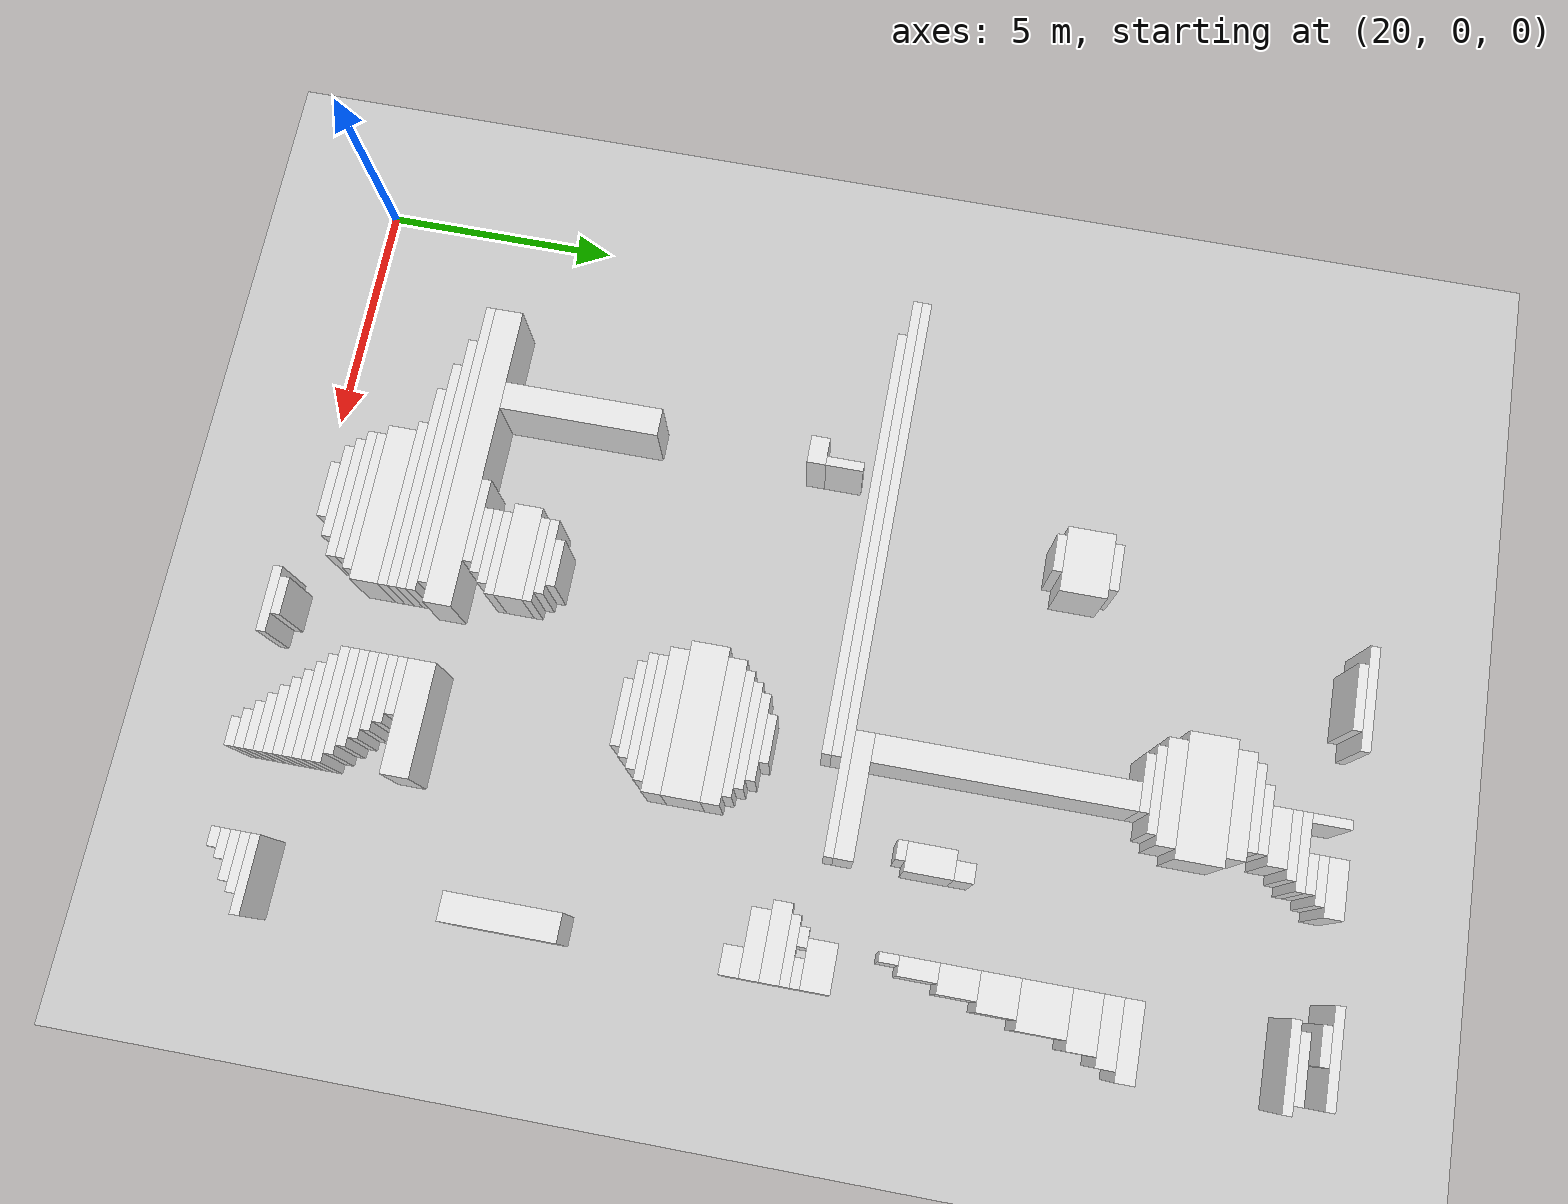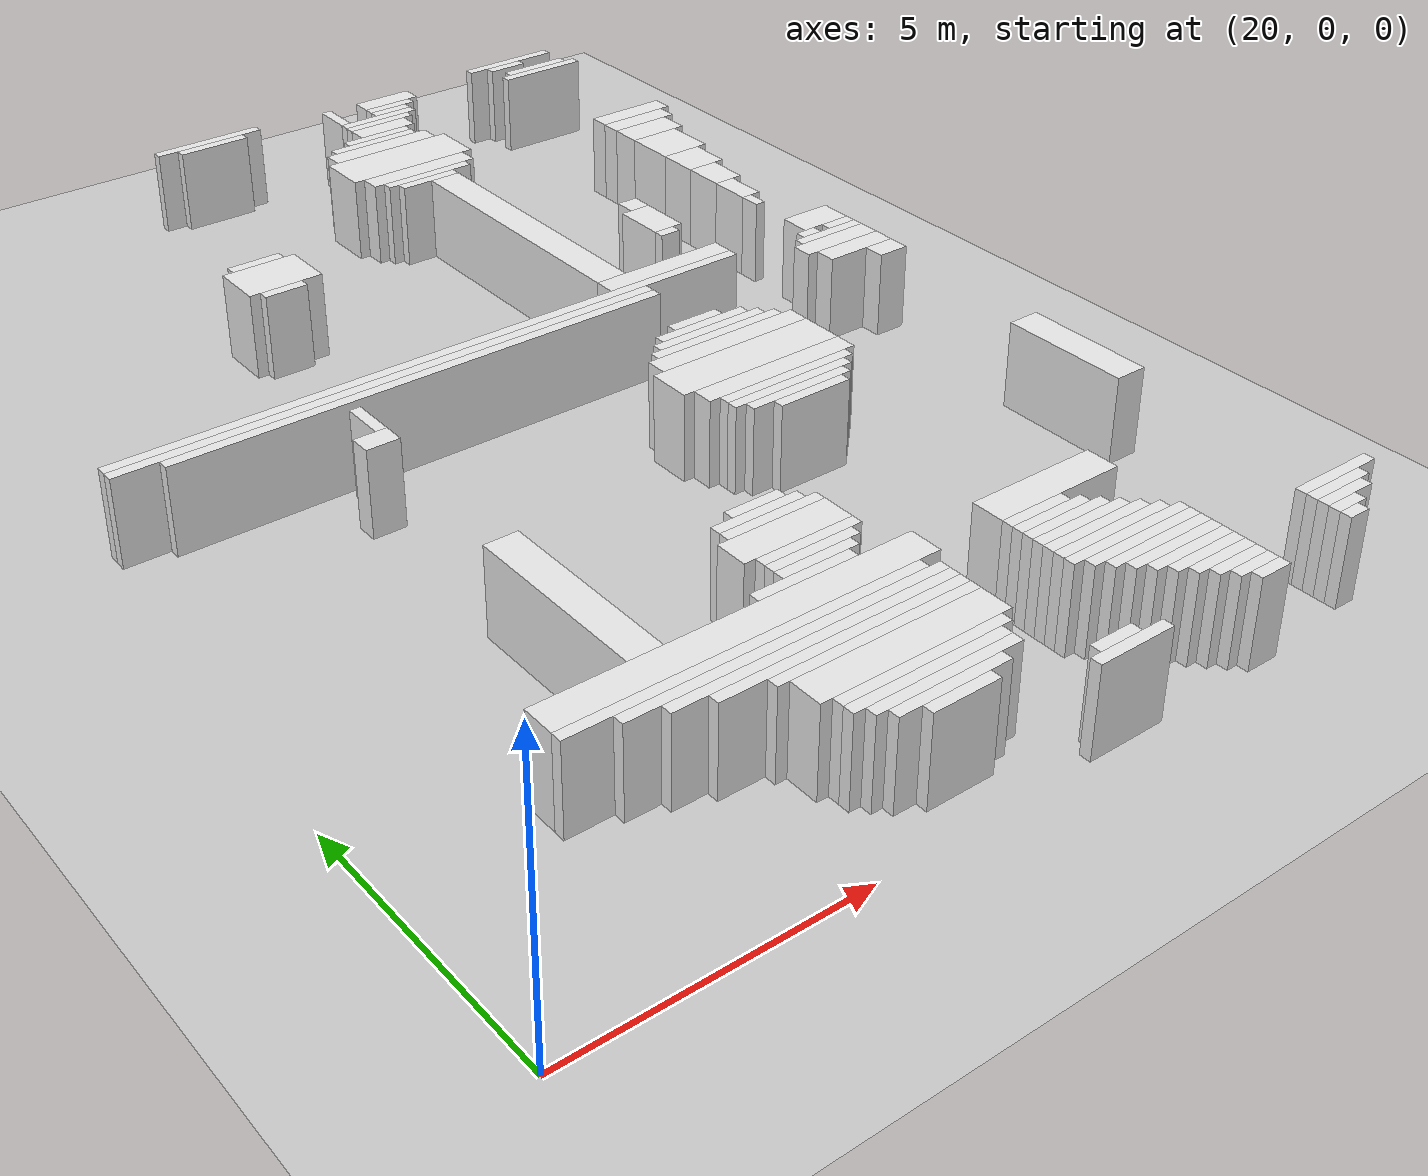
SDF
<sdf version="1.7">
 <world name="default">
  <model name="ground_plane">
   <static>1</static>
   <link name="link">
    <collision name="collision">
     <geometry><plane><normal>0 0 1</normal><size>120 120</size></plane></geometry>
    </collision>
    <visual name="visual">
     <geometry><plane><normal>0 0 1</normal><size>120 120</size></plane></geometry>
     <material>
      <script><uri>file://media/materials/scripts/gazebo.material</uri><name>Gazebo/Grey</name></script>
     </material>
    </visual>
   </link>
  </model>
  <model name="random_complex_02_model">
   <static>1</static>
   <link name="obs_1121">
    <pose>27.5000 22.5000 0.8000 0 0 0</pose>
    <collision name="obs_1121_col"><geometry><box><size>2.2000 0.2000 1.6000</size></box></geometry></collision>
    <visual name="obs_1121_vis">
     <geometry><box><size>2.2000 0.2000 1.6000</size></box></geometry>
     <material>
      <script><uri>file://media/materials/scripts/gazebo.material</uri><name>Gazebo/White</name></script>
     </material>
    </visual>
   </link>
   <link name="obs_1122">
    <pose>34.6000 22.5000 0.8000 0 0 0</pose>
    <collision name="obs_1122_col"><geometry><box><size>2.0000 0.2000 1.6000</size></box></geometry></collision>
    <visual name="obs_1122_vis">
     <geometry><box><size>2.0000 0.2000 1.6000</size></box></geometry>
     <material>
      <script><uri>file://media/materials/scripts/gazebo.material</uri><name>Gazebo/White</name></script>
     </material>
    </visual>
   </link>
   <link name="obs_1129">
    <pose>27.5000 22.3000 0.8000 0 0 0</pose>
    <collision name="obs_1129_col"><geometry><box><size>1.4000 0.2000 1.6000</size></box></geometry></collision>
    <visual name="obs_1129_vis">
     <geometry><box><size>1.4000 0.2000 1.6000</size></box></geometry>
     <material>
      <script><uri>file://media/materials/scripts/gazebo.material</uri><name>Gazebo/White</name></script>
     </material>
    </visual>
   </link>
   <link name="obs_1130">
    <pose>34.4000 22.3000 0.8000 0 0 0</pose>
    <collision name="obs_1130_col"><geometry><box><size>0.8000 0.2000 1.6000</size></box></geometry></collision>
    <visual name="obs_1130_vis">
     <geometry><box><size>0.8000 0.2000 1.6000</size></box></geometry>
     <material>
      <script><uri>file://media/materials/scripts/gazebo.material</uri><name>Gazebo/White</name></script>
     </material>
    </visual>
   </link>
   <link name="obs_1134">
    <pose>31.4000 22.2000 0.8000 0 0 0</pose>
    <collision name="obs_1134_col"><geometry><box><size>1.2000 0.4000 1.6000</size></box></geometry></collision>
    <visual name="obs_1134_vis">
     <geometry><box><size>1.2000 0.4000 1.6000</size></box></geometry>
     <material>
      <script><uri>file://media/materials/scripts/gazebo.material</uri><name>Gazebo/White</name></script>
     </material>
    </visual>
   </link>
   <link name="obs_1141">
    <pose>31.3000 21.9000 0.8000 0 0 0</pose>
    <collision name="obs_1141_col"><geometry><box><size>1.0000 0.2000 1.6000</size></box></geometry></collision>
    <visual name="obs_1141_vis">
     <geometry><box><size>1.0000 0.2000 1.6000</size></box></geometry>
     <material>
      <script><uri>file://media/materials/scripts/gazebo.material</uri><name>Gazebo/White</name></script>
     </material>
    </visual>
   </link>
   <link name="obs_1142">
    <pose>34.9000 21.9000 0.8000 0 0 0</pose>
    <collision name="obs_1142_col"><geometry><box><size>1.4000 0.2000 1.6000</size></box></geometry></collision>
    <visual name="obs_1142_vis">
     <geometry><box><size>1.4000 0.2000 1.6000</size></box></geometry>
     <material>
      <script><uri>file://media/materials/scripts/gazebo.material</uri><name>Gazebo/White</name></script>
     </material>
    </visual>
   </link>
   <link name="obs_1146">
    <pose>30.1000 22.0000 0.8000 0 0 0</pose>
    <collision name="obs_1146_col"><geometry><box><size>0.2000 0.8000 1.6000</size></box></geometry></collision>
    <visual name="obs_1146_vis">
     <geometry><box><size>0.2000 0.8000 1.6000</size></box></geometry>
     <material>
      <script><uri>file://media/materials/scripts/gazebo.material</uri><name>Gazebo/White</name></script>
     </material>
    </visual>
   </link>
   <link name="obs_1152">
    <pose>31.2000 21.7000 0.8000 0 0 0</pose>
    <collision name="obs_1152_col"><geometry><box><size>0.8000 0.2000 1.6000</size></box></geometry></collision>
    <visual name="obs_1152_vis">
     <geometry><box><size>0.8000 0.2000 1.6000</size></box></geometry>
     <material>
      <script><uri>file://media/materials/scripts/gazebo.material</uri><name>Gazebo/White</name></script>
     </material>
    </visual>
   </link>
   <link name="obs_1153">
    <pose>34.9000 21.7000 0.8000 0 0 0</pose>
    <collision name="obs_1153_col"><geometry><box><size>1.8000 0.2000 1.6000</size></box></geometry></collision>
    <visual name="obs_1153_vis">
     <geometry><box><size>1.8000 0.2000 1.6000</size></box></geometry>
     <material>
      <script><uri>file://media/materials/scripts/gazebo.material</uri><name>Gazebo/White</name></script>
     </material>
    </visual>
   </link>
   <link name="obs_1161">
    <pose>30.8000 21.5000 0.8000 0 0 0</pose>
    <collision name="obs_1161_col"><geometry><box><size>1.6000 0.2000 1.6000</size></box></geometry></collision>
    <visual name="obs_1161_vis">
     <geometry><box><size>1.6000 0.2000 1.6000</size></box></geometry>
     <material>
      <script><uri>file://media/materials/scripts/gazebo.material</uri><name>Gazebo/White</name></script>
     </material>
    </visual>
   </link>
   <link name="obs_1169">
    <pose>30.7000 21.3000 0.8000 0 0 0</pose>
    <collision name="obs_1169_col"><geometry><box><size>1.4000 0.2000 1.6000</size></box></geometry></collision>
    <visual name="obs_1169_vis">
     <geometry><box><size>1.4000 0.2000 1.6000</size></box></geometry>
     <material>
      <script><uri>file://media/materials/scripts/gazebo.material</uri><name>Gazebo/White</name></script>
     </material>
    </visual>
   </link>
   <link name="obs_1182">
    <pose>30.6000 21.0000 0.8000 0 0 0</pose>
    <collision name="obs_1182_col"><geometry><box><size>1.2000 0.4000 1.6000</size></box></geometry></collision>
    <visual name="obs_1182_vis">
     <geometry><box><size>1.2000 0.4000 1.6000</size></box></geometry>
     <material>
      <script><uri>file://media/materials/scripts/gazebo.material</uri><name>Gazebo/White</name></script>
     </material>
    </visual>
   </link>
   <link name="obs_1199">
    <pose>30.3000 20.7000 0.8000 0 0 0</pose>
    <collision name="obs_1199_col"><geometry><box><size>1.4000 0.2000 1.6000</size></box></geometry></collision>
    <visual name="obs_1199_vis">
     <geometry><box><size>1.4000 0.2000 1.6000</size></box></geometry>
     <material>
      <script><uri>file://media/materials/scripts/gazebo.material</uri><name>Gazebo/White</name></script>
     </material>
    </visual>
   </link>
   <link name="obs_1206">
    <pose>30.1000 20.5000 0.8000 0 0 0</pose>
    <collision name="obs_1206_col"><geometry><box><size>1.8000 0.2000 1.6000</size></box></geometry></collision>
    <visual name="obs_1206_vis">
     <geometry><box><size>1.8000 0.2000 1.6000</size></box></geometry>
     <material>
      <script><uri>file://media/materials/scripts/gazebo.material</uri><name>Gazebo/White</name></script>
     </material>
    </visual>
   </link>
   <link name="obs_1220">
    <pose>30.1000 20.2000 0.8000 0 0 0</pose>
    <collision name="obs_1220_col"><geometry><box><size>2.2000 0.4000 1.6000</size></box></geometry></collision>
    <visual name="obs_1220_vis">
     <geometry><box><size>2.2000 0.4000 1.6000</size></box></geometry>
     <material>
      <script><uri>file://media/materials/scripts/gazebo.material</uri><name>Gazebo/White</name></script>
     </material>
    </visual>
   </link>
   <link name="obs_1251">
    <pose>30.1000 19.5000 0.8000 0 0 0</pose>
    <collision name="obs_1251_col"><geometry><box><size>2.6000 1.0000 1.6000</size></box></geometry></collision>
    <visual name="obs_1251_vis">
     <geometry><box><size>2.6000 1.0000 1.6000</size></box></geometry>
     <material>
      <script><uri>file://media/materials/scripts/gazebo.material</uri><name>Gazebo/White</name></script>
     </material>
    </visual>
   </link>
   <link name="obs_1276">
    <pose>30.1000 18.8000 0.8000 0 0 0</pose>
    <collision name="obs_1276_col"><geometry><box><size>2.2000 0.4000 1.6000</size></box></geometry></collision>
    <visual name="obs_1276_vis">
     <geometry><box><size>2.2000 0.4000 1.6000</size></box></geometry>
     <material>
      <script><uri>file://media/materials/scripts/gazebo.material</uri><name>Gazebo/White</name></script>
     </material>
    </visual>
   </link>
   <link name="obs_1285">
    <pose>35.0000 18.6000 0.8000 0 0 0</pose>
    <collision name="obs_1285_col"><geometry><box><size>1.6000 0.4000 1.6000</size></box></geometry></collision>
    <visual name="obs_1285_vis">
     <geometry><box><size>1.6000 0.4000 1.6000</size></box></geometry>
     <material>
      <script><uri>file://media/materials/scripts/gazebo.material</uri><name>Gazebo/White</name></script>
     </material>
    </visual>
   </link>
   <link name="obs_1291">
    <pose>30.1000 18.5000 0.8000 0 0 0</pose>
    <collision name="obs_1291_col"><geometry><box><size>1.8000 0.2000 1.6000</size></box></geometry></collision>
    <visual name="obs_1291_vis">
     <geometry><box><size>1.8000 0.2000 1.6000</size></box></geometry>
     <material>
      <script><uri>file://media/materials/scripts/gazebo.material</uri><name>Gazebo/White</name></script>
     </material>
    </visual>
   </link>
   <link name="obs_1296">
    <pose>30.0000 18.3000 0.8000 0 0 0</pose>
    <collision name="obs_1296_col"><geometry><box><size>1.2000 0.2000 1.6000</size></box></geometry></collision>
    <visual name="obs_1296_vis">
     <geometry><box><size>1.2000 0.2000 1.6000</size></box></geometry>
     <material>
      <script><uri>file://media/materials/scripts/gazebo.material</uri><name>Gazebo/White</name></script>
     </material>
    </visual>
   </link>
   <link name="obs_1298">
    <pose>34.9000 18.2000 0.8000 0 0 0</pose>
    <collision name="obs_1298_col"><geometry><box><size>1.4000 0.4000 1.6000</size></box></geometry></collision>
    <visual name="obs_1298_vis">
     <geometry><box><size>1.4000 0.4000 1.6000</size></box></geometry>
     <material>
      <script><uri>file://media/materials/scripts/gazebo.material</uri><name>Gazebo/White</name></script>
     </material>
    </visual>
   </link>
   <link name="obs_1306">
    <pose>34.8000 17.7000 0.8000 0 0 0</pose>
    <collision name="obs_1306_col"><geometry><box><size>1.2000 0.6000 1.6000</size></box></geometry></collision>
    <visual name="obs_1306_vis">
     <geometry><box><size>1.2000 0.6000 1.6000</size></box></geometry>
     <material>
      <script><uri>file://media/materials/scripts/gazebo.material</uri><name>Gazebo/White</name></script>
     </material>
    </visual>
   </link>
   <link name="obs_1316">
    <pose>25.7000 17.1000 0.8000 0 0 0</pose>
    <collision name="obs_1316_col"><geometry><box><size>1.0000 0.2000 1.6000</size></box></geometry></collision>
    <visual name="obs_1316_vis">
     <geometry><box><size>1.0000 0.2000 1.6000</size></box></geometry>
     <material>
      <script><uri>file://media/materials/scripts/gazebo.material</uri><name>Gazebo/White</name></script>
     </material>
    </visual>
   </link>
   <link name="obs_1332">
    <pose>34.7000 16.9000 0.8000 0 0 0</pose>
    <collision name="obs_1332_col"><geometry><box><size>1.0000 1.0000 1.6000</size></box></geometry></collision>
    <visual name="obs_1332_vis">
     <geometry><box><size>1.0000 1.0000 1.6000</size></box></geometry>
     <material>
      <script><uri>file://media/materials/scripts/gazebo.material</uri><name>Gazebo/White</name></script>
     </material>
    </visual>
   </link>
   <link name="obs_1344">
    <pose>25.7000 16.5000 0.8000 0 0 0</pose>
    <collision name="obs_1344_col"><geometry><box><size>1.4000 1.0000 1.6000</size></box></geometry></collision>
    <visual name="obs_1344_vis">
     <geometry><box><size>1.4000 1.0000 1.6000</size></box></geometry>
     <material>
      <script><uri>file://media/materials/scripts/gazebo.material</uri><name>Gazebo/White</name></script>
     </material>
    </visual>
   </link>
   <link name="obs_1355">
    <pose>25.6000 15.9000 0.8000 0 0 0</pose>
    <collision name="obs_1355_col"><geometry><box><size>0.8000 0.2000 1.6000</size></box></geometry></collision>
    <visual name="obs_1355_vis">
     <geometry><box><size>0.8000 0.2000 1.6000</size></box></geometry>
     <material>
      <script><uri>file://media/materials/scripts/gazebo.material</uri><name>Gazebo/White</name></script>
     </material>
    </visual>
   </link>
   <link name="obs_1357">
    <pose>34.6000 16.0000 0.8000 0 0 0</pose>
    <collision name="obs_1357_col"><geometry><box><size>0.8000 0.8000 1.6000</size></box></geometry></collision>
    <visual name="obs_1357_vis">
     <geometry><box><size>0.8000 0.8000 1.6000</size></box></geometry>
     <material>
      <script><uri>file://media/materials/scripts/gazebo.material</uri><name>Gazebo/White</name></script>
     </material>
    </visual>
   </link>
   <link name="obs_1380">
    <pose>34.5000 15.2000 0.8000 0 0 0</pose>
    <collision name="obs_1380_col"><geometry><box><size>0.6000 0.8000 1.6000</size></box></geometry></collision>
    <visual name="obs_1380_vis">
     <geometry><box><size>0.6000 0.8000 1.6000</size></box></geometry>
     <material>
      <script><uri>file://media/materials/scripts/gazebo.material</uri><name>Gazebo/White</name></script>
     </material>
    </visual>
   </link>
   <link name="obs_1382">
    <pose>32.4000 15.0000 0.8000 0 0 0</pose>
    <collision name="obs_1382_col"><geometry><box><size>0.4000 0.4000 1.6000</size></box></geometry></collision>
    <visual name="obs_1382_vis">
     <geometry><box><size>0.4000 0.4000 1.6000</size></box></geometry>
     <material>
      <script><uri>file://media/materials/scripts/gazebo.material</uri><name>Gazebo/White</name></script>
     </material>
    </visual>
   </link>
   <link name="obs_1406">
    <pose>34.4000 14.4000 0.8000 0 0 0</pose>
    <collision name="obs_1406_col"><geometry><box><size>0.4000 0.8000 1.6000</size></box></geometry></collision>
    <visual name="obs_1406_vis">
     <geometry><box><size>0.4000 0.8000 1.6000</size></box></geometry>
     <material>
      <script><uri>file://media/materials/scripts/gazebo.material</uri><name>Gazebo/White</name></script>
     </material>
    </visual>
   </link>
   <link name="obs_1412">
    <pose>32.3000 14.3000 0.8000 0 0 0</pose>
    <collision name="obs_1412_col"><geometry><box><size>0.6000 1.0000 1.6000</size></box></geometry></collision>
    <visual name="obs_1412_vis">
     <geometry><box><size>0.6000 1.0000 1.6000</size></box></geometry>
     <material>
      <script><uri>file://media/materials/scripts/gazebo.material</uri><name>Gazebo/White</name></script>
     </material>
    </visual>
   </link>
   <link name="obs_1421">
    <pose>34.3000 13.8000 0.8000 0 0 0</pose>
    <collision name="obs_1421_col"><geometry><box><size>0.2000 0.4000 1.6000</size></box></geometry></collision>
    <visual name="obs_1421_vis">
     <geometry><box><size>0.2000 0.4000 1.6000</size></box></geometry>
     <material>
      <script><uri>file://media/materials/scripts/gazebo.material</uri><name>Gazebo/White</name></script>
     </material>
    </visual>
   </link>
   <link name="obs_1427">
    <pose>32.2000 13.7000 0.8000 0 0 0</pose>
    <collision name="obs_1427_col"><geometry><box><size>0.4000 0.2000 1.6000</size></box></geometry></collision>
    <visual name="obs_1427_vis">
     <geometry><box><size>0.4000 0.2000 1.6000</size></box></geometry>
     <material>
      <script><uri>file://media/materials/scripts/gazebo.material</uri><name>Gazebo/White</name></script>
     </material>
    </visual>
   </link>
   <link name="obs_1442">
    <pose>30.3000 15.5000 0.8000 0 0 0</pose>
    <collision name="obs_1442_col"><geometry><box><size>0.6000 5.4000 1.6000</size></box></geometry></collision>
    <visual name="obs_1442_vis">
     <geometry><box><size>0.6000 5.4000 1.6000</size></box></geometry>
     <material>
      <script><uri>file://media/materials/scripts/gazebo.material</uri><name>Gazebo/White</name></script>
     </material>
    </visual>
   </link>
   <link name="obs_1454">
    <pose>31.3000 12.6000 0.8000 0 0 0</pose>
    <collision name="obs_1454_col"><geometry><box><size>2.6000 0.4000 1.6000</size></box></geometry></collision>
    <visual name="obs_1454_vis">
     <geometry><box><size>2.6000 0.4000 1.6000</size></box></geometry>
     <material>
      <script><uri>file://media/materials/scripts/gazebo.material</uri><name>Gazebo/White</name></script>
     </material>
    </visual>
   </link>
   <link name="obs_1458">
    <pose>34.7000 12.5000 0.8000 0 0 0</pose>
    <collision name="obs_1458_col"><geometry><box><size>1.0000 0.6000 1.6000</size></box></geometry></collision>
    <visual name="obs_1458_vis">
     <geometry><box><size>1.0000 0.6000 1.6000</size></box></geometry>
     <material>
      <script><uri>file://media/materials/scripts/gazebo.material</uri><name>Gazebo/White</name></script>
     </material>
    </visual>
   </link>
   <link name="obs_1463">
    <pose>26.6000 12.3000 0.8000 0 0 0</pose>
    <collision name="obs_1463_col"><geometry><box><size>12.0000 0.2000 1.6000</size></box></geometry></collision>
    <visual name="obs_1463_vis">
     <geometry><box><size>12.0000 0.2000 1.6000</size></box></geometry>
     <material>
      <script><uri>file://media/materials/scripts/gazebo.material</uri><name>Gazebo/White</name></script>
     </material>
    </visual>
   </link>
   <link name="obs_1472">
    <pose>25.6000 12.1000 0.8000 0 0 0</pose>
    <collision name="obs_1472_col"><geometry><box><size>10.0000 0.2000 1.6000</size></box></geometry></collision>
    <visual name="obs_1472_vis">
     <geometry><box><size>10.0000 0.2000 1.6000</size></box></geometry>
     <material>
      <script><uri>file://media/materials/scripts/gazebo.material</uri><name>Gazebo/White</name></script>
     </material>
    </visual>
   </link>
   <link name="obs_1473">
    <pose>34.2000 12.1000 0.8000 0 0 0</pose>
    <collision name="obs_1473_col"><geometry><box><size>0.4000 0.2000 1.6000</size></box></geometry></collision>
    <visual name="obs_1473_vis">
     <geometry><box><size>0.4000 0.2000 1.6000</size></box></geometry>
     <material>
      <script><uri>file://media/materials/scripts/gazebo.material</uri><name>Gazebo/White</name></script>
     </material>
    </visual>
   </link>
   <link name="obs_1474">
    <pose>34.9000 12.1000 0.8000 0 0 0</pose>
    <collision name="obs_1474_col"><geometry><box><size>0.6000 0.2000 1.6000</size></box></geometry></collision>
    <visual name="obs_1474_vis">
     <geometry><box><size>0.6000 0.2000 1.6000</size></box></geometry>
     <material>
      <script><uri>file://media/materials/scripts/gazebo.material</uri><name>Gazebo/White</name></script>
     </material>
    </visual>
   </link>
   <link name="obs_1483">
    <pose>26.0000 11.9000 0.8000 0 0 0</pose>
    <collision name="obs_1483_col"><geometry><box><size>9.2000 0.2000 1.6000</size></box></geometry></collision>
    <visual name="obs_1483_vis">
     <geometry><box><size>9.2000 0.2000 1.6000</size></box></geometry>
     <material>
      <script><uri>file://media/materials/scripts/gazebo.material</uri><name>Gazebo/White</name></script>
     </material>
    </visual>
   </link>
   <link name="obs_1484">
    <pose>34.5000 11.9000 0.8000 0 0 0</pose>
    <collision name="obs_1484_col"><geometry><box><size>1.4000 0.2000 1.6000</size></box></geometry></collision>
    <visual name="obs_1484_vis">
     <geometry><box><size>1.4000 0.2000 1.6000</size></box></geometry>
     <material>
      <script><uri>file://media/materials/scripts/gazebo.material</uri><name>Gazebo/White</name></script>
     </material>
    </visual>
   </link>
   <link name="obs_1492">
    <pose>34.4000 11.6000 0.8000 0 0 0</pose>
    <collision name="obs_1492_col"><geometry><box><size>1.6000 0.4000 1.6000</size></box></geometry></collision>
    <visual name="obs_1492_vis">
     <geometry><box><size>1.6000 0.4000 1.6000</size></box></geometry>
     <material>
      <script><uri>file://media/materials/scripts/gazebo.material</uri><name>Gazebo/White</name></script>
     </material>
    </visual>
   </link>
   <link name="obs_1502">
    <pose>34.5000 11.2000 0.8000 0 0 0</pose>
    <collision name="obs_1502_col"><geometry><box><size>1.4000 0.4000 1.6000</size></box></geometry></collision>
    <visual name="obs_1502_vis">
     <geometry><box><size>1.4000 0.4000 1.6000</size></box></geometry>
     <material>
      <script><uri>file://media/materials/scripts/gazebo.material</uri><name>Gazebo/White</name></script>
     </material>
    </visual>
   </link>
   <link name="obs_1505">
    <pose>24.5000 11.2000 0.8000 0 0 0</pose>
    <collision name="obs_1505_col"><geometry><box><size>0.2000 0.8000 1.6000</size></box></geometry></collision>
    <visual name="obs_1505_vis">
     <geometry><box><size>0.2000 0.8000 1.6000</size></box></geometry>
     <material>
      <script><uri>file://media/materials/scripts/gazebo.material</uri><name>Gazebo/White</name></script>
     </material>
    </visual>
   </link>
   <link name="obs_1510">
    <pose>34.9000 10.8000 0.8000 0 0 0</pose>
    <collision name="obs_1510_col"><geometry><box><size>0.6000 0.4000 1.6000</size></box></geometry></collision>
    <visual name="obs_1510_vis">
     <geometry><box><size>0.6000 0.4000 1.6000</size></box></geometry>
     <material>
      <script><uri>file://media/materials/scripts/gazebo.material</uri><name>Gazebo/White</name></script>
     </material>
    </visual>
   </link>
   <link name="obs_1514">
    <pose>30.5000 10.7000 0.8000 0 0 0</pose>
    <collision name="obs_1514_col"><geometry><box><size>1.0000 0.2000 1.6000</size></box></geometry></collision>
    <visual name="obs_1514_vis">
     <geometry><box><size>1.0000 0.2000 1.6000</size></box></geometry>
     <material>
      <script><uri>file://media/materials/scripts/gazebo.material</uri><name>Gazebo/White</name></script>
     </material>
    </visual>
   </link>
   <link name="obs_1517">
    <pose>24.3000 10.6000 0.8000 0 0 0</pose>
    <collision name="obs_1517_col"><geometry><box><size>0.6000 0.4000 1.6000</size></box></geometry></collision>
    <visual name="obs_1517_vis">
     <geometry><box><size>0.6000 0.4000 1.6000</size></box></geometry>
     <material>
      <script><uri>file://media/materials/scripts/gazebo.material</uri><name>Gazebo/White</name></script>
     </material>
    </visual>
   </link>
   <link name="obs_1521">
    <pose>30.5000 10.5000 0.8000 0 0 0</pose>
    <collision name="obs_1521_col"><geometry><box><size>1.8000 0.2000 1.6000</size></box></geometry></collision>
    <visual name="obs_1521_vis">
     <geometry><box><size>1.8000 0.2000 1.6000</size></box></geometry>
     <material>
      <script><uri>file://media/materials/scripts/gazebo.material</uri><name>Gazebo/White</name></script>
     </material>
    </visual>
   </link>
   <link name="obs_1529">
    <pose>30.5000 10.3000 0.8000 0 0 0</pose>
    <collision name="obs_1529_col"><geometry><box><size>2.2000 0.2000 1.6000</size></box></geometry></collision>
    <visual name="obs_1529_vis">
     <geometry><box><size>2.2000 0.2000 1.6000</size></box></geometry>
     <material>
      <script><uri>file://media/materials/scripts/gazebo.material</uri><name>Gazebo/White</name></script>
     </material>
    </visual>
   </link>
   <link name="obs_1536">
    <pose>30.5000 10.1000 0.8000 0 0 0</pose>
    <collision name="obs_1536_col"><geometry><box><size>2.6000 0.2000 1.6000</size></box></geometry></collision>
    <visual name="obs_1536_vis">
     <geometry><box><size>2.6000 0.2000 1.6000</size></box></geometry>
     <material>
      <script><uri>file://media/materials/scripts/gazebo.material</uri><name>Gazebo/White</name></script>
     </material>
    </visual>
   </link>
   <link name="obs_1550">
    <pose>30.5000 9.8000 0.8000 0 0 0</pose>
    <collision name="obs_1550_col"><geometry><box><size>3.0000 0.4000 1.6000</size></box></geometry></collision>
    <visual name="obs_1550_vis">
     <geometry><box><size>3.0000 0.4000 1.6000</size></box></geometry>
     <material>
      <script><uri>file://media/materials/scripts/gazebo.material</uri><name>Gazebo/White</name></script>
     </material>
    </visual>
   </link>
   <link name="obs_1586">
    <pose>30.4000 9.2000 0.8000 0 0 0</pose>
    <collision name="obs_1586_col"><geometry><box><size>3.2000 0.8000 1.6000</size></box></geometry></collision>
    <visual name="obs_1586_vis">
     <geometry><box><size>3.2000 0.8000 1.6000</size></box></geometry>
     <material>
      <script><uri>file://media/materials/scripts/gazebo.material</uri><name>Gazebo/White</name></script>
     </material>
    </visual>
   </link>
   <link name="obs_1606">
    <pose>30.5000 8.6000 0.8000 0 0 0</pose>
    <collision name="obs_1606_col"><geometry><box><size>3.0000 0.4000 1.6000</size></box></geometry></collision>
    <visual name="obs_1606_vis">
     <geometry><box><size>3.0000 0.4000 1.6000</size></box></geometry>
     <material>
      <script><uri>file://media/materials/scripts/gazebo.material</uri><name>Gazebo/White</name></script>
     </material>
    </visual>
   </link>
   <link name="obs_1619">
    <pose>30.5000 8.3000 0.8000 0 0 0</pose>
    <collision name="obs_1619_col"><geometry><box><size>2.6000 0.2000 1.6000</size></box></geometry></collision>
    <visual name="obs_1619_vis">
     <geometry><box><size>2.6000 0.2000 1.6000</size></box></geometry>
     <material>
      <script><uri>file://media/materials/scripts/gazebo.material</uri><name>Gazebo/White</name></script>
     </material>
    </visual>
   </link>
   <link name="obs_1629">
    <pose>30.4000 8.1000 0.8000 0 0 0</pose>
    <collision name="obs_1629_col"><geometry><box><size>2.4000 0.2000 1.6000</size></box></geometry></collision>
    <visual name="obs_1629_vis">
     <geometry><box><size>2.4000 0.2000 1.6000</size></box></geometry>
     <material>
      <script><uri>file://media/materials/scripts/gazebo.material</uri><name>Gazebo/White</name></script>
     </material>
    </visual>
   </link>
   <link name="obs_1636">
    <pose>30.4000 7.9000 0.8000 0 0 0</pose>
    <collision name="obs_1636_col"><geometry><box><size>2.0000 0.2000 1.6000</size></box></geometry></collision>
    <visual name="obs_1636_vis">
     <geometry><box><size>2.0000 0.2000 1.6000</size></box></geometry>
     <material>
      <script><uri>file://media/materials/scripts/gazebo.material</uri><name>Gazebo/White</name></script>
     </material>
    </visual>
   </link>
   <link name="obs_1642">
    <pose>30.5000 7.7000 0.8000 0 0 0</pose>
    <collision name="obs_1642_col"><geometry><box><size>1.4000 0.2000 1.6000</size></box></geometry></collision>
    <visual name="obs_1642_vis">
     <geometry><box><size>1.4000 0.2000 1.6000</size></box></geometry>
     <material>
      <script><uri>file://media/materials/scripts/gazebo.material</uri><name>Gazebo/White</name></script>
     </material>
    </visual>
   </link>
   <link name="obs_1710">
    <pose>27.7000 5.7000 0.8000 0 0 0</pose>
    <collision name="obs_1710_col"><geometry><box><size>1.0000 0.2000 1.6000</size></box></geometry></collision>
    <visual name="obs_1710_vis">
     <geometry><box><size>1.0000 0.2000 1.6000</size></box></geometry>
     <material>
      <script><uri>file://media/materials/scripts/gazebo.material</uri><name>Gazebo/White</name></script>
     </material>
    </visual>
   </link>
   <link name="obs_1722">
    <pose>27.6000 5.5000 0.8000 0 0 0</pose>
    <collision name="obs_1722_col"><geometry><box><size>1.6000 0.2000 1.6000</size></box></geometry></collision>
    <visual name="obs_1722_vis">
     <geometry><box><size>1.6000 0.2000 1.6000</size></box></geometry>
     <material>
      <script><uri>file://media/materials/scripts/gazebo.material</uri><name>Gazebo/White</name></script>
     </material>
    </visual>
   </link>
   <link name="obs_1732">
    <pose>27.7000 5.3000 0.8000 0 0 0</pose>
    <collision name="obs_1732_col"><geometry><box><size>1.8000 0.2000 1.6000</size></box></geometry></collision>
    <visual name="obs_1732_vis">
     <geometry><box><size>1.8000 0.2000 1.6000</size></box></geometry>
     <material>
      <script><uri>file://media/materials/scripts/gazebo.material</uri><name>Gazebo/White</name></script>
     </material>
    </visual>
   </link>
   <link name="obs_1733">
    <pose>34.9000 6.2000 0.8000 0 0 0</pose>
    <collision name="obs_1733_col"><geometry><box><size>0.6000 2.4000 1.6000</size></box></geometry></collision>
    <visual name="obs_1733_vis">
     <geometry><box><size>0.6000 2.4000 1.6000</size></box></geometry>
     <material>
      <script><uri>file://media/materials/scripts/gazebo.material</uri><name>Gazebo/White</name></script>
     </material>
    </visual>
   </link>
   <link name="obs_1755">
    <pose>27.6000 4.9000 0.8000 0 0 0</pose>
    <collision name="obs_1755_col"><geometry><box><size>2.0000 0.6000 1.6000</size></box></geometry></collision>
    <visual name="obs_1755_vis">
     <geometry><box><size>2.0000 0.6000 1.6000</size></box></geometry>
     <material>
      <script><uri>file://media/materials/scripts/gazebo.material</uri><name>Gazebo/White</name></script>
     </material>
    </visual>
   </link>
   <link name="obs_1769">
    <pose>27.7000 4.5000 0.8000 0 0 0</pose>
    <collision name="obs_1769_col"><geometry><box><size>1.8000 0.2000 1.6000</size></box></geometry></collision>
    <visual name="obs_1769_vis">
     <geometry><box><size>1.8000 0.2000 1.6000</size></box></geometry>
     <material>
      <script><uri>file://media/materials/scripts/gazebo.material</uri><name>Gazebo/White</name></script>
     </material>
    </visual>
   </link>
   <link name="obs_1779">
    <pose>27.6000 4.3000 0.8000 0 0 0</pose>
    <collision name="obs_1779_col"><geometry><box><size>1.6000 0.2000 1.6000</size></box></geometry></collision>
    <visual name="obs_1779_vis">
     <geometry><box><size>1.6000 0.2000 1.6000</size></box></geometry>
     <material>
      <script><uri>file://media/materials/scripts/gazebo.material</uri><name>Gazebo/White</name></script>
     </material>
    </visual>
   </link>
   <link name="obs_1791">
    <pose>27.5000 4.1000 0.8000 0 0 0</pose>
    <collision name="obs_1791_col"><geometry><box><size>1.4000 0.2000 1.6000</size></box></geometry></collision>
    <visual name="obs_1791_vis">
     <geometry><box><size>1.4000 0.2000 1.6000</size></box></geometry>
     <material>
      <script><uri>file://media/materials/scripts/gazebo.material</uri><name>Gazebo/White</name></script>
     </material>
    </visual>
   </link>
   <link name="obs_1794">
    <pose>24.3000 5.5000 0.8000 0 0 0</pose>
    <collision name="obs_1794_col"><geometry><box><size>0.6000 3.4000 1.6000</size></box></geometry></collision>
    <visual name="obs_1794_vis">
     <geometry><box><size>0.6000 3.4000 1.6000</size></box></geometry>
     <material>
      <script><uri>file://media/materials/scripts/gazebo.material</uri><name>Gazebo/White</name></script>
     </material>
    </visual>
   </link>
   <link name="obs_1805">
    <pose>27.1000 3.9000 0.8000 0 0 0</pose>
    <collision name="obs_1805_col"><geometry><box><size>1.8000 0.2000 1.6000</size></box></geometry></collision>
    <visual name="obs_1805_vis">
     <geometry><box><size>1.8000 0.2000 1.6000</size></box></geometry>
     <material>
      <script><uri>file://media/materials/scripts/gazebo.material</uri><name>Gazebo/White</name></script>
     </material>
    </visual>
   </link>
   <link name="obs_1819">
    <pose>25.7000 3.5000 0.8000 0 0 0</pose>
    <collision name="obs_1819_col"><geometry><box><size>6.6000 0.6000 1.6000</size></box></geometry></collision>
    <visual name="obs_1819_vis">
     <geometry><box><size>6.6000 0.6000 1.6000</size></box></geometry>
     <material>
      <script><uri>file://media/materials/scripts/gazebo.material</uri><name>Gazebo/White</name></script>
     </material>
    </visual>
   </link>
   <link name="obs_1820">
    <pose>31.4000 3.5000 0.8000 0 0 0</pose>
    <collision name="obs_1820_col"><geometry><box><size>2.4000 0.6000 1.6000</size></box></geometry></collision>
    <visual name="obs_1820_vis">
     <geometry><box><size>2.4000 0.6000 1.6000</size></box></geometry>
     <material>
      <script><uri>file://media/materials/scripts/gazebo.material</uri><name>Gazebo/White</name></script>
     </material>
    </visual>
   </link>
   <link name="obs_1828">
    <pose>25.5000 3.1000 0.8000 0 0 0</pose>
    <collision name="obs_1828_col"><geometry><box><size>6.2000 0.2000 1.6000</size></box></geometry></collision>
    <visual name="obs_1828_vis">
     <geometry><box><size>6.2000 0.2000 1.6000</size></box></geometry>
     <material>
      <script><uri>file://media/materials/scripts/gazebo.material</uri><name>Gazebo/White</name></script>
     </material>
    </visual>
   </link>
   <link name="obs_1829">
    <pose>30.8000 3.1000 0.8000 0 0 0</pose>
    <collision name="obs_1829_col"><geometry><box><size>1.2000 0.2000 1.6000</size></box></geometry></collision>
    <visual name="obs_1829_vis">
     <geometry><box><size>1.2000 0.2000 1.6000</size></box></geometry>
     <material>
      <script><uri>file://media/materials/scripts/gazebo.material</uri><name>Gazebo/White</name></script>
     </material>
    </visual>
   </link>
   <link name="obs_1836">
    <pose>26.0000 2.9000 0.8000 0 0 0</pose>
    <collision name="obs_1836_col"><geometry><box><size>5.6000 0.2000 1.6000</size></box></geometry></collision>
    <visual name="obs_1836_vis">
     <geometry><box><size>5.6000 0.2000 1.6000</size></box></geometry>
     <material>
      <script><uri>file://media/materials/scripts/gazebo.material</uri><name>Gazebo/White</name></script>
     </material>
    </visual>
   </link>
   <link name="obs_1837">
    <pose>30.9000 2.9000 0.8000 0 0 0</pose>
    <collision name="obs_1837_col"><geometry><box><size>1.4000 0.2000 1.6000</size></box></geometry></collision>
    <visual name="obs_1837_vis">
     <geometry><box><size>1.4000 0.2000 1.6000</size></box></geometry>
     <material>
      <script><uri>file://media/materials/scripts/gazebo.material</uri><name>Gazebo/White</name></script>
     </material>
    </visual>
   </link>
   <link name="obs_1845">
    <pose>26.3000 2.7000 0.8000 0 0 0</pose>
    <collision name="obs_1845_col"><geometry><box><size>5.0000 0.2000 1.6000</size></box></geometry></collision>
    <visual name="obs_1845_vis">
     <geometry><box><size>5.0000 0.2000 1.6000</size></box></geometry>
     <material>
      <script><uri>file://media/materials/scripts/gazebo.material</uri><name>Gazebo/White</name></script>
     </material>
    </visual>
   </link>
   <link name="obs_1846">
    <pose>31.0000 2.7000 0.8000 0 0 0</pose>
    <collision name="obs_1846_col"><geometry><box><size>1.6000 0.2000 1.6000</size></box></geometry></collision>
    <visual name="obs_1846_vis">
     <geometry><box><size>1.6000 0.2000 1.6000</size></box></geometry>
     <material>
      <script><uri>file://media/materials/scripts/gazebo.material</uri><name>Gazebo/White</name></script>
     </material>
    </visual>
   </link>
   <link name="obs_1856">
    <pose>26.6000 2.5000 0.8000 0 0 0</pose>
    <collision name="obs_1856_col"><geometry><box><size>4.4000 0.2000 1.6000</size></box></geometry></collision>
    <visual name="obs_1856_vis">
     <geometry><box><size>4.4000 0.2000 1.6000</size></box></geometry>
     <material>
      <script><uri>file://media/materials/scripts/gazebo.material</uri><name>Gazebo/White</name></script>
     </material>
    </visual>
   </link>
   <link name="obs_1857">
    <pose>31.1000 2.5000 0.8000 0 0 0</pose>
    <collision name="obs_1857_col"><geometry><box><size>1.8000 0.2000 1.6000</size></box></geometry></collision>
    <visual name="obs_1857_vis">
     <geometry><box><size>1.8000 0.2000 1.6000</size></box></geometry>
     <material>
      <script><uri>file://media/materials/scripts/gazebo.material</uri><name>Gazebo/White</name></script>
     </material>
    </visual>
   </link>
   <link name="obs_1866">
    <pose>27.0000 2.3000 0.8000 0 0 0</pose>
    <collision name="obs_1866_col"><geometry><box><size>3.6000 0.2000 1.6000</size></box></geometry></collision>
    <visual name="obs_1866_vis">
     <geometry><box><size>3.6000 0.2000 1.6000</size></box></geometry>
     <material>
      <script><uri>file://media/materials/scripts/gazebo.material</uri><name>Gazebo/White</name></script>
     </material>
    </visual>
   </link>
   <link name="obs_1867">
    <pose>31.2000 2.3000 0.8000 0 0 0</pose>
    <collision name="obs_1867_col"><geometry><box><size>2.0000 0.2000 1.6000</size></box></geometry></collision>
    <visual name="obs_1867_vis">
     <geometry><box><size>2.0000 0.2000 1.6000</size></box></geometry>
     <material>
      <script><uri>file://media/materials/scripts/gazebo.material</uri><name>Gazebo/White</name></script>
     </material>
    </visual>
   </link>
   <link name="obs_1874">
    <pose>31.3000 2.1000 0.8000 0 0 0</pose>
    <collision name="obs_1874_col"><geometry><box><size>2.2000 0.2000 1.6000</size></box></geometry></collision>
    <visual name="obs_1874_vis">
     <geometry><box><size>2.2000 0.2000 1.6000</size></box></geometry>
     <material>
      <script><uri>file://media/materials/scripts/gazebo.material</uri><name>Gazebo/White</name></script>
     </material>
    </visual>
   </link>
   <link name="obs_1880">
    <pose>31.4000 1.9000 0.8000 0 0 0</pose>
    <collision name="obs_1880_col"><geometry><box><size>2.4000 0.2000 1.6000</size></box></geometry></collision>
    <visual name="obs_1880_vis">
     <geometry><box><size>2.4000 0.2000 1.6000</size></box></geometry>
     <material>
      <script><uri>file://media/materials/scripts/gazebo.material</uri><name>Gazebo/White</name></script>
     </material>
    </visual>
   </link>
   <link name="obs_1884">
    <pose>27.1000 1.9000 0.8000 0 0 0</pose>
    <collision name="obs_1884_col"><geometry><box><size>3.4000 0.6000 1.6000</size></box></geometry></collision>
    <visual name="obs_1884_vis">
     <geometry><box><size>3.4000 0.6000 1.6000</size></box></geometry>
     <material>
      <script><uri>file://media/materials/scripts/gazebo.material</uri><name>Gazebo/White</name></script>
     </material>
    </visual>
   </link>
   <link name="obs_1892">
    <pose>31.5000 1.7000 0.8000 0 0 0</pose>
    <collision name="obs_1892_col"><geometry><box><size>2.2000 0.2000 1.6000</size></box></geometry></collision>
    <visual name="obs_1892_vis">
     <geometry><box><size>2.2000 0.2000 1.6000</size></box></geometry>
     <material>
      <script><uri>file://media/materials/scripts/gazebo.material</uri><name>Gazebo/White</name></script>
     </material>
    </visual>
   </link>
   <link name="obs_1903">
    <pose>27.1000 1.5000 0.8000 0 0 0</pose>
    <collision name="obs_1903_col"><geometry><box><size>3.0000 0.2000 1.6000</size></box></geometry></collision>
    <visual name="obs_1903_vis">
     <geometry><box><size>3.0000 0.2000 1.6000</size></box></geometry>
     <material>
      <script><uri>file://media/materials/scripts/gazebo.material</uri><name>Gazebo/White</name></script>
     </material>
    </visual>
   </link>
   <link name="obs_1904">
    <pose>31.6000 1.5000 0.8000 0 0 0</pose>
    <collision name="obs_1904_col"><geometry><box><size>2.0000 0.2000 1.6000</size></box></geometry></collision>
    <visual name="obs_1904_vis">
     <geometry><box><size>2.0000 0.2000 1.6000</size></box></geometry>
     <material>
      <script><uri>file://media/materials/scripts/gazebo.material</uri><name>Gazebo/White</name></script>
     </material>
    </visual>
   </link>
   <link name="obs_1912">
    <pose>27.0000 1.3000 0.8000 0 0 0</pose>
    <collision name="obs_1912_col"><geometry><box><size>2.8000 0.2000 1.6000</size></box></geometry></collision>
    <visual name="obs_1912_vis">
     <geometry><box><size>2.8000 0.2000 1.6000</size></box></geometry>
     <material>
      <script><uri>file://media/materials/scripts/gazebo.material</uri><name>Gazebo/White</name></script>
     </material>
    </visual>
   </link>
   <link name="obs_1913">
    <pose>31.7000 1.3000 0.8000 0 0 0</pose>
    <collision name="obs_1913_col"><geometry><box><size>1.8000 0.2000 1.6000</size></box></geometry></collision>
    <visual name="obs_1913_vis">
     <geometry><box><size>1.8000 0.2000 1.6000</size></box></geometry>
     <material>
      <script><uri>file://media/materials/scripts/gazebo.material</uri><name>Gazebo/White</name></script>
     </material>
    </visual>
   </link>
   <link name="obs_1921">
    <pose>27.1000 1.1000 0.8000 0 0 0</pose>
    <collision name="obs_1921_col"><geometry><box><size>2.6000 0.2000 1.6000</size></box></geometry></collision>
    <visual name="obs_1921_vis">
     <geometry><box><size>2.6000 0.2000 1.6000</size></box></geometry>
     <material>
      <script><uri>file://media/materials/scripts/gazebo.material</uri><name>Gazebo/White</name></script>
     </material>
    </visual>
   </link>
   <link name="obs_1922">
    <pose>31.8000 1.1000 0.8000 0 0 0</pose>
    <collision name="obs_1922_col"><geometry><box><size>1.6000 0.2000 1.6000</size></box></geometry></collision>
    <visual name="obs_1922_vis">
     <geometry><box><size>1.6000 0.2000 1.6000</size></box></geometry>
     <material>
      <script><uri>file://media/materials/scripts/gazebo.material</uri><name>Gazebo/White</name></script>
     </material>
    </visual>
   </link>
   <link name="obs_1923">
    <pose>35.0000 1.1000 0.8000 0 0 0</pose>
    <collision name="obs_1923_col"><geometry><box><size>1.6000 0.2000 1.6000</size></box></geometry></collision>
    <visual name="obs_1923_vis">
     <geometry><box><size>1.6000 0.2000 1.6000</size></box></geometry>
     <material>
      <script><uri>file://media/materials/scripts/gazebo.material</uri><name>Gazebo/White</name></script>
     </material>
    </visual>
   </link>
   <link name="obs_1932">
    <pose>27.0000 0.9000 0.8000 0 0 0</pose>
    <collision name="obs_1932_col"><geometry><box><size>2.0000 0.2000 1.6000</size></box></geometry></collision>
    <visual name="obs_1932_vis">
     <geometry><box><size>2.0000 0.2000 1.6000</size></box></geometry>
     <material>
      <script><uri>file://media/materials/scripts/gazebo.material</uri><name>Gazebo/White</name></script>
     </material>
    </visual>
   </link>
   <link name="obs_1933">
    <pose>31.9000 0.9000 0.8000 0 0 0</pose>
    <collision name="obs_1933_col"><geometry><box><size>1.4000 0.2000 1.6000</size></box></geometry></collision>
    <visual name="obs_1933_vis">
     <geometry><box><size>1.4000 0.2000 1.6000</size></box></geometry>
     <material>
      <script><uri>file://media/materials/scripts/gazebo.material</uri><name>Gazebo/White</name></script>
     </material>
    </visual>
   </link>
   <link name="obs_1934">
    <pose>34.8000 0.9000 0.8000 0 0 0</pose>
    <collision name="obs_1934_col"><geometry><box><size>1.2000 0.2000 1.6000</size></box></geometry></collision>
    <visual name="obs_1934_vis">
     <geometry><box><size>1.2000 0.2000 1.6000</size></box></geometry>
     <material>
      <script><uri>file://media/materials/scripts/gazebo.material</uri><name>Gazebo/White</name></script>
     </material>
    </visual>
   </link>
   <link name="obs_1942">
    <pose>27.0000 0.7000 0.8000 0 0 0</pose>
    <collision name="obs_1942_col"><geometry><box><size>1.2000 0.2000 1.6000</size></box></geometry></collision>
    <visual name="obs_1942_vis">
     <geometry><box><size>1.2000 0.2000 1.6000</size></box></geometry>
     <material>
      <script><uri>file://media/materials/scripts/gazebo.material</uri><name>Gazebo/White</name></script>
     </material>
    </visual>
   </link>
   <link name="obs_1943">
    <pose>32.0000 0.7000 0.8000 0 0 0</pose>
    <collision name="obs_1943_col"><geometry><box><size>1.2000 0.2000 1.6000</size></box></geometry></collision>
    <visual name="obs_1943_vis">
     <geometry><box><size>1.2000 0.2000 1.6000</size></box></geometry>
     <material>
      <script><uri>file://media/materials/scripts/gazebo.material</uri><name>Gazebo/White</name></script>
     </material>
    </visual>
   </link>
   <link name="obs_1944">
    <pose>34.7000 0.7000 0.8000 0 0 0</pose>
    <collision name="obs_1944_col"><geometry><box><size>1.0000 0.2000 1.6000</size></box></geometry></collision>
    <visual name="obs_1944_vis">
     <geometry><box><size>1.0000 0.2000 1.6000</size></box></geometry>
     <material>
      <script><uri>file://media/materials/scripts/gazebo.material</uri><name>Gazebo/White</name></script>
     </material>
    </visual>
   </link>
   <link name="obs_1951">
    <pose>32.1000 0.5000 0.8000 0 0 0</pose>
    <collision name="obs_1951_col"><geometry><box><size>1.0000 0.2000 1.6000</size></box></geometry></collision>
    <visual name="obs_1951_vis">
     <geometry><box><size>1.0000 0.2000 1.6000</size></box></geometry>
     <material>
      <script><uri>file://media/materials/scripts/gazebo.material</uri><name>Gazebo/White</name></script>
     </material>
    </visual>
   </link>
   <link name="obs_1952">
    <pose>34.5000 0.5000 0.8000 0 0 0</pose>
    <collision name="obs_1952_col"><geometry><box><size>0.6000 0.2000 1.6000</size></box></geometry></collision>
    <visual name="obs_1952_vis">
     <geometry><box><size>0.6000 0.2000 1.6000</size></box></geometry>
     <material>
      <script><uri>file://media/materials/scripts/gazebo.material</uri><name>Gazebo/White</name></script>
     </material>
    </visual>
   </link>
   <link name="obs_1958">
    <pose>29.4000 0.3000 0.8000 0 0 0</pose>
    <collision name="obs_1958_col"><geometry><box><size>0.8000 0.2000 1.6000</size></box></geometry></collision>
    <visual name="obs_1958_vis">
     <geometry><box><size>0.8000 0.2000 1.6000</size></box></geometry>
     <material>
      <script><uri>file://media/materials/scripts/gazebo.material</uri><name>Gazebo/White</name></script>
     </material>
    </visual>
   </link>
   <link name="obs_1959">
    <pose>32.2000 0.3000 0.8000 0 0 0</pose>
    <collision name="obs_1959_col"><geometry><box><size>0.8000 0.2000 1.6000</size></box></geometry></collision>
    <visual name="obs_1959_vis">
     <geometry><box><size>0.8000 0.2000 1.6000</size></box></geometry>
     <material>
      <script><uri>file://media/materials/scripts/gazebo.material</uri><name>Gazebo/White</name></script>
     </material>
    </visual>
   </link>
   <link name="obs_1960">
    <pose>34.4000 0.3000 0.8000 0 0 0</pose>
    <collision name="obs_1960_col"><geometry><box><size>0.4000 0.2000 1.6000</size></box></geometry></collision>
    <visual name="obs_1960_vis">
     <geometry><box><size>0.4000 0.2000 1.6000</size></box></geometry>
     <material>
      <script><uri>file://media/materials/scripts/gazebo.material</uri><name>Gazebo/White</name></script>
     </material>
    </visual>
   </link>
   <link name="obs_1967">
    <pose>29.5000 0.1000 0.8000 0 0 0</pose>
    <collision name="obs_1967_col"><geometry><box><size>1.4000 0.2000 1.6000</size></box></geometry></collision>
    <visual name="obs_1967_vis">
     <geometry><box><size>1.4000 0.2000 1.6000</size></box></geometry>
     <material>
      <script><uri>file://media/materials/scripts/gazebo.material</uri><name>Gazebo/White</name></script>
     </material>
    </visual>
   </link>
   <link name="obs_1968">
    <pose>32.3000 0.1000 0.8000 0 0 0</pose>
    <collision name="obs_1968_col"><geometry><box><size>0.6000 0.2000 1.6000</size></box></geometry></collision>
    <visual name="obs_1968_vis">
     <geometry><box><size>0.6000 0.2000 1.6000</size></box></geometry>
     <material>
      <script><uri>file://media/materials/scripts/gazebo.material</uri><name>Gazebo/White</name></script>
     </material>
    </visual>
   </link>
  </model>
 </world>
</sdf>
